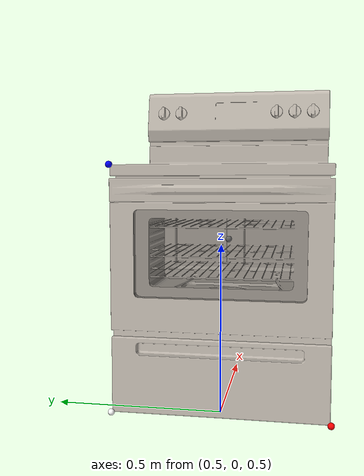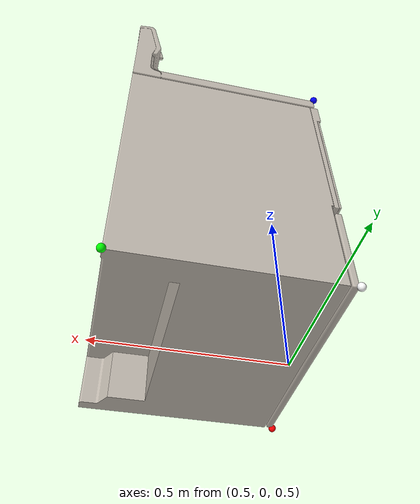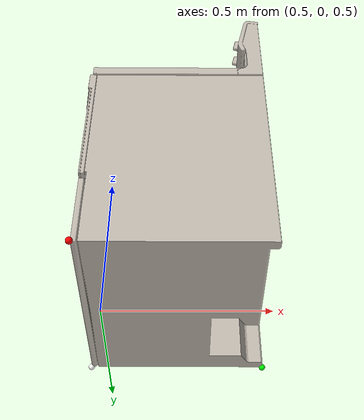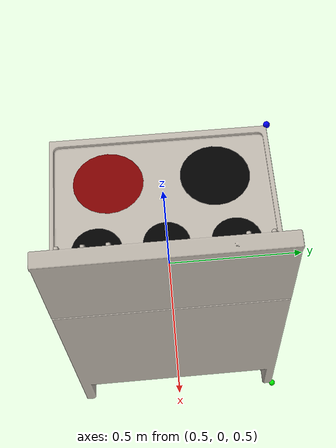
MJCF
<mujoco model="model">
  <compiler angle="radian"/>
  <asset>
    <texture file="../objects/bigym/induction_stove/visuals/material_0.png" name="tex-model" type="2d"/>
    <texture type="2d" name="image0" file="../objects/bigym/induction_stove/visuals/image0.png"/>
    <material name="model" reflectance="0.5" texrepeat="1 1" texture="tex-model" texuniform="false"/>
    <material name="MI_electric_range_01" texture="image0" specular="0.5" shininess="0.25"/>
    <material name="MI_electric_range_glass" specular="0.5" shininess="1.0" rgba="0.103704 0.103704 0.103704 0.250000"/>
    <mesh file="../objects/bigym/induction_stove/visuals/model_0.obj" name="model_0_vis" scale="1 1 1"/>
    <mesh file="../objects/bigym/induction_stove/visuals/model_1.obj" name="model_1_vis" scale="1 1 1"/>
    <mesh file="../objects/bigym/induction_stove/visuals/knob_rear_center_0.obj" name="knob_rear_center_0_vis" scale="1 1 1"/>
    <mesh file="../objects/bigym/induction_stove/visuals/knob_rear_right_0.obj" name="knob_rear_right_0_vis" scale="1 1 1"/>
    <mesh file="../objects/bigym/induction_stove/visuals/knob_front_left_0.obj" name="knob_front_left_0_vis" scale="1 1 1"/>
    <mesh file="../objects/bigym/induction_stove/visuals/knob_front_right_0.obj" name="knob_front_right_0_vis" scale="1 1 1"/>
    <mesh file="../objects/bigym/induction_stove/visuals/knob_rear_left_0.obj" name="knob_rear_left_0_vis" scale="1 1 1"/>
  </asset>

  <default>
    <default class="induction_stove_visual">
      <geom conaffinity="0" contype="0" group="1" type="mesh"/>
    </default>
    <default class="induction_stove_collision">
      <geom group="0" rgba="0.5 0 0 0"/>
    </default>
  </default>

  <worldbody>
    <body pos="0.7 0 1.0" quat="0.707107 0 0 -0.707107">
      <body name="induction_stove_object">
        <geom solimp="0.998 0.998 0.001" solref="0.001 1" density="100" friction="0.95 0.3 0.1" type="mesh" mesh="model_0_vis" material="MI_electric_range_glass" class="induction_stove_visual"/>
        <geom solimp="0.998 0.998 0.001" solref="0.001 1" density="100" friction="0.95 0.3 0.1" type="mesh" mesh="model_1_vis" material="MI_electric_range_01" class="induction_stove_visual"/>
        <geom class="induction_stove_collision" pos="0 0.02 -0.13" size="0.32 0.275 0.36" type="box"/>
        <geom class="induction_stove_collision" pos="0 0.27 0.35" size="0.32 0.03 0.15" type="box"/>
        <geom class="induction_stove_collision" pos="0 0.23 0.37" size="0.32 0.01 0.025" type="box"/>
        <geom class="induction_stove_collision" pos="-0.025 0.24 0.43" size="0.13 0.01 0.03" type="box"/>
        <site name="burner_on_front_left" pos="-0.152 -0.10 0.223" size="0.10 0.0001" rgba="0 0 0 1" type="cylinder"/>
        <site name="burner_on_front_right" pos="0.152 -0.10 0.223" size="0.10 0.0001" rgba="0.5 0 0 1" type="cylinder"/>
        <site name="burner_on_rear_left" pos="-0.192 0.115 0.223" size="0.07 0.0001" rgba="0 0 0 1" type="cylinder"/>
        <site name="burner_on_rear_right" pos="0.19 0.115 0.223" size="0.07 0.0001" rgba="0 0 0 1" type="cylinder"/>
        <site name="burner_on_rear_center" pos="0.0 0.107 0.223" size="0.065 0.0001" rgba="0 0 0 1" type="cylinder"/>
        <site name="burner_front_left_place_site" pos="-0.152 -0.10 0.223" size="0.10 0.0001" rgba="0.5 0 0 0" type="cylinder"/>
        <site name="burner_front_right_place_site" pos="0.152 -0.10 0.223" size="0.10 0.0001" rgba="0.5 0 0 0" type="cylinder"/>
        <site name="burner_rear_left_place_site" pos="-0.192 0.115 0.223" size="0.07 0.0001" rgba="0.5 0 0 0" type="cylinder"/>
        <site name="burner_rear_right_place_site" pos="0.19 0.115 0.223" size="0.07 0.0001" rgba="0.5 0 0 0" type="cylinder"/>
        <site name="burner_rear_center_place_site" pos="0.0 0.107 0.223" size="0.065 0.0001" rgba="0.5 0 0 0" type="cylinder"/>
        <body name="knob_rear_center">
          <!--Add Joint Here-->
          <geom solimp="0.998 0.998 0.001" solref="0.001 1" density="100" friction="0.95 0.3 0.1" type="mesh" mesh="knob_rear_center_0_vis" material="MI_electric_range_01" class="induction_stove_visual"/>
          <geom class="induction_stove_collision" pos="0.14 0.22 0.427" size="0.01 0.015 0.022" type="box" name="knob_rear_center_main"/>
        </body>
        <body name="knob_rear_right">
          <!--Add Joint Here-->
          <geom solimp="0.998 0.998 0.001" solref="0.001 1" density="100" friction="0.95 0.3 0.1" type="mesh" mesh="knob_rear_right_0_vis" material="MI_electric_range_01" class="induction_stove_visual"/>
          <geom class="induction_stove_collision" pos="0.20 0.22 0.427" size="0.01 0.015 0.022" type="box" name="knob_rear_right_main"/>
        </body>
        <body name="knob_front_left">
          <!--Add Joint Here-->
          <geom solimp="0.998 0.998 0.001" solref="0.001 1" density="100" friction="0.95 0.3 0.1" type="mesh" mesh="knob_front_left_0_vis" material="MI_electric_range_01" class="induction_stove_visual"/>
          <geom class="induction_stove_collision" pos="-0.26 0.22 0.427" size="0.01 0.015 0.022" type="box" name="knob_front_left_main"/>
        </body>
        <body name="knob_front_right">
          <!--Add Joint Here-->
          <geom solimp="0.998 0.998 0.001" solref="0.001 1" density="100" friction="0.95 0.3 0.1" type="mesh" mesh="knob_front_right_0_vis" material="MI_electric_range_01" class="induction_stove_visual"/>
          <geom class="induction_stove_collision" pos="0.265 0.22 0.427" size="0.01 0.015 0.022" type="box" name="knob_front_right_main"/>
        </body>
        <body name="knob_rear_left">
          <!--Add Joint Here-->
          <geom solimp="0.998 0.998 0.001" solref="0.001 1" density="100" friction="0.95 0.3 0.1" type="mesh" mesh="knob_rear_left_0_vis" material="MI_electric_range_01" class="induction_stove_visual"/>
          <geom class="induction_stove_collision" pos="-0.20 0.22 0.427" size="0.01 0.015 0.022" type="box" name="knob_rear_left_main"/>
        </body>
        <!-- exterior bounding box points -->
        <site rgba="1 1 1 1" size="0.01" pos="-0.32 -0.255 -0.50" name="ext_p0"/>
        <site rgba="1 0 0 1" size="0.01" pos="0.32 -0.255 -0.50" name="ext_px"/>
        <site rgba="0 1 0 1" size="0.01" pos="-0.32 0.295 -0.50" name="ext_py"/>
        <site rgba="0 0 1 1" size="0.01" pos="-0.32 -0.255 0.233" name="ext_pz"/>
        <!-- interior bounding box points -->
        <site rgba="0.5 0.5 0.5 1" size="0.01" pos="0 0 0" name="int_p0"/>
        <site rgba="1 1 0 1" size="0.01" pos="0 0 0" name="int_px"/>
        <site rgba="0 1 1 1" size="0.01" pos="0 0 0" name="int_py"/>
        <site rgba="1 0 1 1" size="0.01" pos="0 0 0" name="int_pz"/>
      </body>
    </body>
  </worldbody>
</mujoco>
